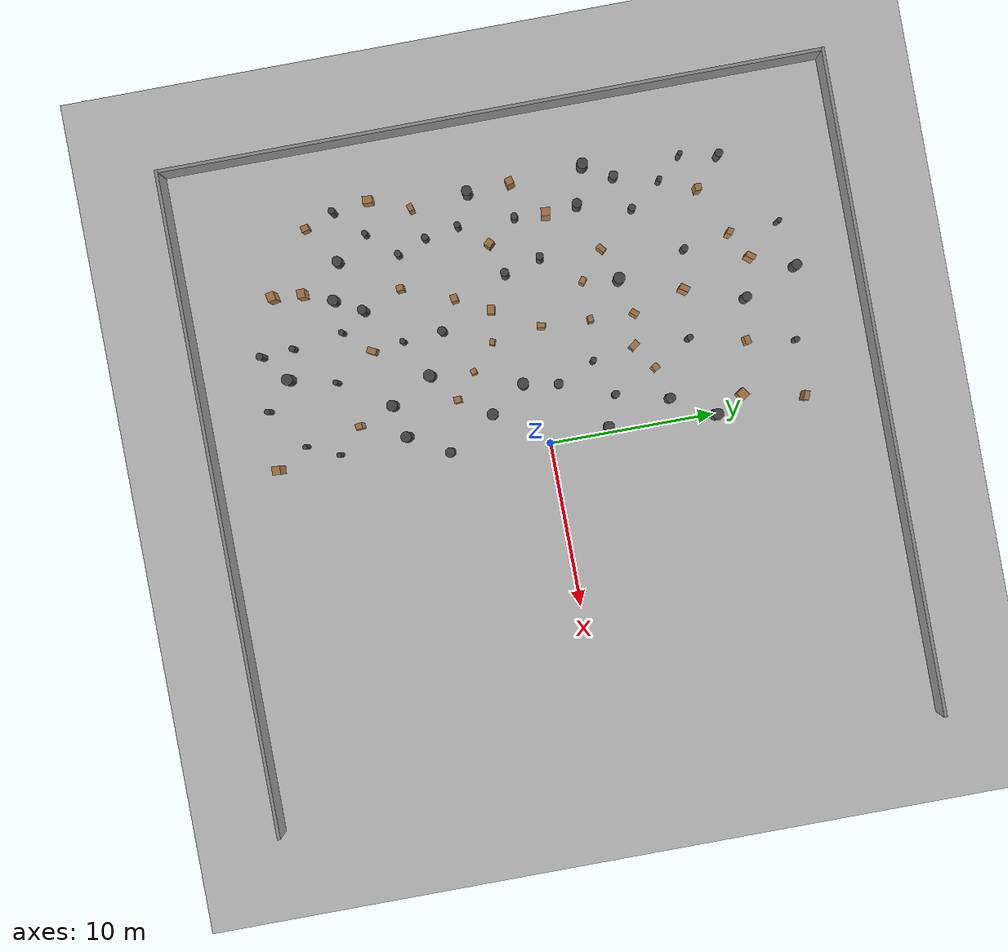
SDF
<sdf version="1.6">
 <world name="default">
  <model name="ground_plane">
   <static>1</static>
   <link name="link">
    <collision name="collision">
     <geometry><plane><normal>0 0 1</normal><size>80 80</size></plane></geometry>
     <surface><friction><ode><mu>0.5</mu><mu2>0.5</mu2></ode></friction></surface>
    </collision>
    <visual name="visual">
     <cast_shadows>0</cast_shadows>
     <geometry><plane><normal>0 0 1</normal><size>80 80</size></plane></geometry>
     <material>
      <script><uri>file://media/materials/scripts/gazebo.material</uri><name>Gazebo/Grey</name></script>
     </material>
    </visual>
   </link>
  </model>
  <model name="wall_north">
   <static>1</static>
   <link name="link">
    <collision name="collision"><geometry><box><size>40.4 0.2 1.5</size></box></geometry></collision>
    <visual name="visual">
     <geometry><box><size>40.4 0.2 1.5</size></box></geometry>
     <material>
      <script><uri>file://media/materials/scripts/gazebo.material</uri><name>Gazebo/Grey</name></script>
     </material>
    </visual>
   </link>
   <pose>0 20.1 0.75 0 0 0</pose>
  </model>
  <model name="wall_south">
   <static>1</static>
   <link name="link">
    <collision name="collision"><geometry><box><size>40.4 0.2 1.5</size></box></geometry></collision>
    <visual name="visual">
     <geometry><box><size>40.4 0.2 1.5</size></box></geometry>
     <material>
      <script><uri>file://media/materials/scripts/gazebo.material</uri><name>Gazebo/Grey</name></script>
     </material>
    </visual>
   </link>
   <pose>0 -20.1 0.75 0 0 0</pose>
  </model>
  <model name="wall_west">
   <static>1</static>
   <link name="link">
    <collision name="collision"><geometry><box><size>0.2 40.4 1.5</size></box></geometry></collision>
    <visual name="visual">
     <geometry><box><size>0.2 40.4 1.5</size></box></geometry>
     <material>
      <script><uri>file://media/materials/scripts/gazebo.material</uri><name>Gazebo/Grey</name></script>
     </material>
    </visual>
   </link>
   <pose>-20.1 0 0.75 0 0 0</pose>
  </model>
  <model name="obs_000">
   <static>1</static>
   <link name="link">
    <collision name="collision">
     <geometry><cylinder><radius>0.33</radius><length>1.2</length></cylinder></geometry>
    </collision>
    <visual name="visual">
     <geometry><cylinder><radius>0.33</radius><length>1.2</length></cylinder></geometry>
     <material>
      <script><uri>file://media/materials/scripts/gazebo.material</uri><name>Gazebo/DarkGrey</name></script>
     </material>
    </visual>
   </link>
   <pose>-3.93 -8.89 0.60 0 0 0</pose>
  </model>
  <model name="obs_003">
   <static>1</static>
   <link name="link">
    <collision name="collision"><geometry><box><size>0.32 0.54 0.8</size></box></geometry></collision>
    <visual name="visual">
     <geometry><box><size>0.32 0.54 0.8</size></box></geometry>
     <material>
      <script><uri>file://media/materials/scripts/gazebo.material</uri><name>Gazebo/Wood</name></script>
     </material>
    </visual>
   </link>
   <pose>-10.97 5.10 0.40 0 0 2.3</pose>
  </model>
  <model name="obs_006">
   <static>1</static>
   <link name="link">
    <collision name="collision"><geometry><box><size>0.39 0.34 1.3</size></box></geometry></collision>
    <visual name="visual">
     <geometry><box><size>0.39 0.34 1.3</size></box></geometry>
     <material>
      <script><uri>file://media/materials/scripts/gazebo.material</uri><name>Gazebo/Wood</name></script>
     </material>
    </visual>
   </link>
   <pose>-10.49 12.80 0.65 0 0 -0.58</pose>
  </model>
  <model name="obs_008">
   <static>1</static>
   <link name="link">
    <collision name="collision">
     <geometry><cylinder><radius>0.3</radius><length>1.2</length></cylinder></geometry>
    </collision>
    <visual name="visual">
     <geometry><cylinder><radius>0.3</radius><length>1.2</length></cylinder></geometry>
     <material>
      <script><uri>file://media/materials/scripts/gazebo.material</uri><name>Gazebo/DarkGrey</name></script>
     </material>
    </visual>
   </link>
   <pose>-1.37 7.53 0.60 0 0 0</pose>
  </model>
  <model name="obs_009">
   <static>1</static>
   <link name="link">
    <collision name="collision">
     <geometry><cylinder><radius>0.16</radius><length>1.4</length></cylinder></geometry>
    </collision>
    <visual name="visual">
     <geometry><cylinder><radius>0.16</radius><length>1.4</length></cylinder></geometry>
     <material>
      <script><uri>file://media/materials/scripts/gazebo.material</uri><name>Gazebo/DarkGrey</name></script>
     </material>
    </visual>
   </link>
   <pose>-5.88 -11.92 0.70 0 0 0</pose>
  </model>
  <model name="obs_012">
   <static>1</static>
   <link name="link">
    <collision name="collision"><geometry><box><size>0.5 0.42 1.1</size></box></geometry></collision>
    <visual name="visual">
     <geometry><box><size>0.5 0.42 1.1</size></box></geometry>
     <material>
      <script><uri>file://media/materials/scripts/gazebo.material</uri><name>Gazebo/Wood</name></script>
     </material>
    </visual>
   </link>
   <pose>-8.52 -2.07 0.55 0 0 2.94</pose>
  </model>
  <model name="obs_013">
   <static>1</static>
   <link name="link">
    <collision name="collision"><geometry><box><size>0.38 0.57 1.0</size></box></geometry></collision>
    <visual name="visual">
     <geometry><box><size>0.38 0.57 1.0</size></box></geometry>
     <material>
      <script><uri>file://media/materials/scripts/gazebo.material</uri><name>Gazebo/Wood</name></script>
     </material>
    </visual>
   </link>
   <pose>-7.39 -9.52 0.50 0 0 2.67</pose>
  </model>
  <model name="obs_014">
   <static>1</static>
   <link name="link">
    <collision name="collision"><geometry><box><size>0.52 0.36 0.9</size></box></geometry></collision>
    <visual name="visual">
     <geometry><box><size>0.52 0.36 0.9</size></box></geometry>
     <material>
      <script><uri>file://media/materials/scripts/gazebo.material</uri><name>Gazebo/Wood</name></script>
     </material>
    </visual>
   </link>
   <pose>-3.97 12.71 0.45 0 0 -2.95</pose>
  </model>
  <model name="obs_015">
   <static>1</static>
   <link name="link">
    <collision name="collision">
     <geometry><cylinder><radius>0.18</radius><length>1.0</length></cylinder></geometry>
    </collision>
    <visual name="visual">
     <geometry><cylinder><radius>0.18</radius><length>1.0</length></cylinder></geometry>
     <material>
      <script><uri>file://media/materials/scripts/gazebo.material</uri><name>Gazebo/DarkGrey</name></script>
     </material>
    </visual>
   </link>
   <pose>-14.38 -8.67 0.50 0 0 0</pose>
  </model>
  <model name="obs_016">
   <static>1</static>
   <link name="link">
    <collision name="collision">
     <geometry><cylinder><radius>0.35</radius><length>1.2</length></cylinder></geometry>
    </collision>
    <visual name="visual">
     <geometry><cylinder><radius>0.35</radius><length>1.2</length></cylinder></geometry>
     <material>
      <script><uri>file://media/materials/scripts/gazebo.material</uri><name>Gazebo/DarkGrey</name></script>
     </material>
    </visual>
   </link>
   <pose>-8.96 5.81 0.60 0 0 0</pose>
  </model>
  <model name="obs_017">
   <static>1</static>
   <link name="link">
    <collision name="collision"><geometry><box><size>0.55 0.31 1.2</size></box></geometry></collision>
    <visual name="visual">
     <geometry><box><size>0.55 0.31 1.2</size></box></geometry>
     <material>
      <script><uri>file://media/materials/scripts/gazebo.material</uri><name>Gazebo/Wood</name></script>
     </material>
    </visual>
   </link>
   <pose>-0.07 15.53 0.60 0 0 2.77</pose>
  </model>
  <model name="obs_019">
   <static>1</static>
   <link name="link">
    <collision name="collision"><geometry><box><size>0.57 0.39 0.9</size></box></geometry></collision>
    <visual name="visual">
     <geometry><box><size>0.57 0.39 0.9</size></box></geometry>
     <material>
      <script><uri>file://media/materials/scripts/gazebo.material</uri><name>Gazebo/Wood</name></script>
     </material>
    </visual>
   </link>
   <pose>-4.88 6.00 0.45 0 0 2.22</pose>
  </model>
  <model name="obs_022">
   <static>1</static>
   <link name="link">
    <collision name="collision">
     <geometry><cylinder><radius>0.25</radius><length>1.5</length></cylinder></geometry>
    </collision>
    <visual name="visual">
     <geometry><cylinder><radius>0.25</radius><length>1.5</length></cylinder></geometry>
     <material>
      <script><uri>file://media/materials/scripts/gazebo.material</uri><name>Gazebo/DarkGrey</name></script>
     </material>
    </visual>
   </link>
   <pose>-10.48 -0.85 0.75 0 0 0</pose>
  </model>
  <model name="obs_024">
   <static>1</static>
   <link name="link">
    <collision name="collision">
     <geometry><cylinder><radius>0.22</radius><length>0.9</length></cylinder></geometry>
    </collision>
    <visual name="visual">
     <geometry><cylinder><radius>0.22</radius><length>0.9</length></cylinder></geometry>
     <material>
      <script><uri>file://media/materials/scripts/gazebo.material</uri><name>Gazebo/DarkGrey</name></script>
     </material>
    </visual>
   </link>
   <pose>-10.05 10.00 0.45 0 0 0</pose>
  </model>
  <model name="obs_026">
   <static>1</static>
   <link name="link">
    <collision name="collision">
     <geometry><cylinder><radius>0.15</radius><length>1.3</length></cylinder></geometry>
    </collision>
    <visual name="visual">
     <geometry><cylinder><radius>0.15</radius><length>1.3</length></cylinder></geometry>
     <material>
      <script><uri>file://media/materials/scripts/gazebo.material</uri><name>Gazebo/DarkGrey</name></script>
     </material>
    </visual>
   </link>
   <pose>-15.61 10.68 0.65 0 0 0</pose>
  </model>
  <model name="obs_031">
   <static>1</static>
   <link name="link">
    <collision name="collision">
     <geometry><cylinder><radius>0.32</radius><length>1.0</length></cylinder></geometry>
    </collision>
    <visual name="visual">
     <geometry><cylinder><radius>0.32</radius><length>1.0</length></cylinder></geometry>
     <material>
      <script><uri>file://media/materials/scripts/gazebo.material</uri><name>Gazebo/DarkGrey</name></script>
     </material>
    </visual>
   </link>
   <pose>-10.79 -11.25 0.50 0 0 0</pose>
  </model>
  <model name="obs_037">
   <static>1</static>
   <link name="link">
    <collision name="collision"><geometry><box><size>0.39 0.42 1.2</size></box></geometry></collision>
    <visual name="visual">
     <geometry><box><size>0.39 0.42 1.2</size></box></geometry>
     <material>
      <script><uri>file://media/materials/scripts/gazebo.material</uri><name>Gazebo/Wood</name></script>
     </material>
    </visual>
   </link>
   <pose>-13.45 11.40 0.60 0 0 1.59</pose>
  </model>
  <model name="obs_038">
   <static>1</static>
   <link name="link">
    <collision name="collision">
     <geometry><cylinder><radius>0.34</radius><length>1.1</length></cylinder></geometry>
    </collision>
    <visual name="visual">
     <geometry><cylinder><radius>0.34</radius><length>1.1</length></cylinder></geometry>
     <material>
      <script><uri>file://media/materials/scripts/gazebo.material</uri><name>Gazebo/DarkGrey</name></script>
     </material>
    </visual>
   </link>
   <pose>-16.10 4.88 0.55 0 0 0</pose>
  </model>
  <model name="obs_040">
   <static>1</static>
   <link name="link">
    <collision name="collision"><geometry><box><size>0.56 0.49 1.5</size></box></geometry></collision>
    <visual name="visual">
     <geometry><box><size>0.56 0.49 1.5</size></box></geometry>
     <material>
      <script><uri>file://media/materials/scripts/gazebo.material</uri><name>Gazebo/Wood</name></script>
     </material>
    </visual>
   </link>
   <pose>-13.59 2.19 0.75 0 0 1.44</pose>
  </model>
  <model name="obs_044">
   <static>1</static>
   <link name="link">
    <collision name="collision">
     <geometry><cylinder><radius>0.34</radius><length>1.4</length></cylinder></geometry>
    </collision>
    <visual name="visual">
     <geometry><cylinder><radius>0.34</radius><length>1.4</length></cylinder></geometry>
     <material>
      <script><uri>file://media/materials/scripts/gazebo.material</uri><name>Gazebo/DarkGrey</name></script>
     </material>
    </visual>
   </link>
   <pose>-3.80 -0.97 0.70 0 0 0</pose>
  </model>
  <model name="obs_046">
   <static>1</static>
   <link name="link">
    <collision name="collision">
     <geometry><cylinder><radius>0.17</radius><length>1.2</length></cylinder></geometry>
    </collision>
    <visual name="visual">
     <geometry><cylinder><radius>0.17</radius><length>1.2</length></cylinder></geometry>
     <material>
      <script><uri>file://media/materials/scripts/gazebo.material</uri><name>Gazebo/DarkGrey</name></script>
     </material>
    </visual>
   </link>
   <pose>-7.60 -7.58 0.60 0 0 0</pose>
  </model>
  <model name="obs_047">
   <static>1</static>
   <link name="link">
    <collision name="collision"><geometry><box><size>0.59 0.35 1.5</size></box></geometry></collision>
    <visual name="visual">
     <geometry><box><size>0.59 0.35 1.5</size></box></geometry>
     <material>
      <script><uri>file://media/materials/scripts/gazebo.material</uri><name>Gazebo/Wood</name></script>
     </material>
    </visual>
   </link>
   <pose>-7.63 9.50 0.75 0 0 -2.21</pose>
  </model>
  <model name="obs_048">
   <static>1</static>
   <link name="link">
    <collision name="collision">
     <geometry><cylinder><radius>0.17</radius><length>1.2</length></cylinder></geometry>
    </collision>
    <visual name="visual">
     <geometry><cylinder><radius>0.17</radius><length>1.2</length></cylinder></geometry>
     <material>
      <script><uri>file://media/materials/scripts/gazebo.material</uri><name>Gazebo/DarkGrey</name></script>
     </material>
    </visual>
   </link>
   <pose>-4.91 -16.26 0.60 0 0 0</pose>
  </model>
  <model name="obs_051">
   <static>1</static>
   <link name="link">
    <collision name="collision">
     <geometry><cylinder><radius>0.22</radius><length>1.1</length></cylinder></geometry>
    </collision>
    <visual name="visual">
     <geometry><cylinder><radius>0.22</radius><length>1.1</length></cylinder></geometry>
     <material>
      <script><uri>file://media/materials/scripts/gazebo.material</uri><name>Gazebo/DarkGrey</name></script>
     </material>
    </visual>
   </link>
   <pose>-13.73 0.31 0.55 0 0 0</pose>
  </model>
  <model name="obs_052">
   <static>1</static>
   <link name="link">
    <collision name="collision"><geometry><box><size>0.34 0.33 1.1</size></box></geometry></collision>
    <visual name="visual">
     <geometry><box><size>0.34 0.33 1.1</size></box></geometry>
     <material>
      <script><uri>file://media/materials/scripts/gazebo.material</uri><name>Gazebo/Wood</name></script>
     </material>
    </visual>
   </link>
   <pose>-5.06 -3.75 0.55 0 0 -1.32</pose>
  </model>
  <model name="obs_053">
   <static>1</static>
   <link name="link">
    <collision name="collision"><geometry><box><size>0.55 0.58 1.0</size></box></geometry></collision>
    <visual name="visual">
     <geometry><box><size>0.55 0.58 1.0</size></box></geometry>
     <material>
      <script><uri>file://media/materials/scripts/gazebo.material</uri><name>Gazebo/Wood</name></script>
     </material>
    </visual>
   </link>
   <pose>-0.82 11.87 0.50 0 0 -0.97</pose>
  </model>
  <model name="obs_054">
   <static>1</static>
   <link name="link">
    <collision name="collision">
     <geometry><cylinder><radius>0.2</radius><length>1.0</length></cylinder></geometry>
    </collision>
    <visual name="visual">
     <geometry><cylinder><radius>0.2</radius><length>1.0</length></cylinder></geometry>
     <material>
      <script><uri>file://media/materials/scripts/gazebo.material</uri><name>Gazebo/DarkGrey</name></script>
     </material>
    </visual>
   </link>
   <pose>-12.82 -6.94 0.50 0 0 0</pose>
  </model>
  <model name="obs_057">
   <static>1</static>
   <link name="link">
    <collision name="collision">
     <geometry><cylinder><radius>0.34</radius><length>0.8</length></cylinder></geometry>
    </collision>
    <visual name="visual">
     <geometry><cylinder><radius>0.34</radius><length>0.8</length></cylinder></geometry>
     <material>
      <script><uri>file://media/materials/scripts/gazebo.material</uri><name>Gazebo/DarkGrey</name></script>
     </material>
    </visual>
   </link>
   <pose>-2.35 -3.10 0.40 0 0 0</pose>
  </model>
  <model name="obs_058">
   <static>1</static>
   <link name="link">
    <collision name="collision">
     <geometry><cylinder><radius>0.32</radius><length>1.5</length></cylinder></geometry>
    </collision>
    <visual name="visual">
     <geometry><cylinder><radius>0.32</radius><length>1.5</length></cylinder></geometry>
     <material>
      <script><uri>file://media/materials/scripts/gazebo.material</uri><name>Gazebo/DarkGrey</name></script>
     </material>
    </visual>
   </link>
   <pose>-1.93 -8.36 0.75 0 0 0</pose>
  </model>
  <model name="obs_059">
   <static>1</static>
   <link name="link">
    <collision name="collision"><geometry><box><size>0.39 0.42 1.1</size></box></geometry></collision>
    <visual name="visual">
     <geometry><box><size>0.39 0.42 1.1</size></box></geometry>
     <material>
      <script><uri>file://media/materials/scripts/gazebo.material</uri><name>Gazebo/Wood</name></script>
     </material>
    </visual>
   </link>
   <pose>-3.35 7.00 0.55 0 0 2.12</pose>
  </model>
  <model name="obs_060">
   <static>1</static>
   <link name="link">
    <collision name="collision">
     <geometry><cylinder><radius>0.29</radius><length>1.2</length></cylinder></geometry>
    </collision>
    <visual name="visual">
     <geometry><cylinder><radius>0.29</radius><length>1.2</length></cylinder></geometry>
     <material>
      <script><uri>file://media/materials/scripts/gazebo.material</uri><name>Gazebo/DarkGrey</name></script>
     </material>
    </visual>
   </link>
   <pose>-6.49 13.09 0.60 0 0 0</pose>
  </model>
  <model name="obs_061">
   <static>1</static>
   <link name="link">
    <collision name="collision"><geometry><box><size>0.42 0.32 1.1</size></box></geometry></collision>
    <visual name="visual">
     <geometry><box><size>0.42 0.32 1.1</size></box></geometry>
     <material>
      <script><uri>file://media/materials/scripts/gazebo.material</uri><name>Gazebo/Wood</name></script>
     </material>
    </visual>
   </link>
   <pose>-15.38 -5.70 0.55 0 0 0.26</pose>
  </model>
  <model name="obs_063">
   <static>1</static>
   <link name="link">
    <collision name="collision"><geometry><box><size>0.54 0.5 1.2</size></box></geometry></collision>
    <visual name="visual">
     <geometry><box><size>0.54 0.5 1.2</size></box></geometry>
     <material>
      <script><uri>file://media/materials/scripts/gazebo.material</uri><name>Gazebo/Wood</name></script>
     </material>
    </visual>
   </link>
   <pose>-11.62 -14.82 0.60 0 0 -2.94</pose>
  </model>
  <model name="obs_064">
   <static>1</static>
   <link name="link">
    <collision name="collision">
     <geometry><cylinder><radius>0.31</radius><length>1.3</length></cylinder></geometry>
    </collision>
    <visual name="visual">
     <geometry><cylinder><radius>0.31</radius><length>1.3</length></cylinder></geometry>
     <material>
      <script><uri>file://media/materials/scripts/gazebo.material</uri><name>Gazebo/DarkGrey</name></script>
     </material>
    </visual>
   </link>
   <pose>-15.70 -2.20 0.65 0 0 0</pose>
  </model>
  <model name="obs_065">
   <static>1</static>
   <link name="link">
    <collision name="collision"><geometry><box><size>0.52 0.49 1.5</size></box></geometry></collision>
    <visual name="visual">
     <geometry><box><size>0.52 0.49 1.5</size></box></geometry>
     <material>
      <script><uri>file://media/materials/scripts/gazebo.material</uri><name>Gazebo/Wood</name></script>
     </material>
    </visual>
   </link>
   <pose>-1.37 -16.30 0.75 0 0 -0.05</pose>
  </model>
  <model name="obs_066">
   <static>1</static>
   <link name="link">
    <collision name="collision">
     <geometry><cylinder><radius>0.28</radius><length>0.9</length></cylinder></geometry>
    </collision>
    <visual name="visual">
     <geometry><cylinder><radius>0.28</radius><length>0.9</length></cylinder></geometry>
     <material>
      <script><uri>file://media/materials/scripts/gazebo.material</uri><name>Gazebo/DarkGrey</name></script>
     </material>
    </visual>
   </link>
   <pose>-3.44 1.13 0.45 0 0 0</pose>
  </model>
  <model name="obs_067">
   <static>1</static>
   <link name="link">
    <collision name="collision">
     <geometry><cylinder><radius>0.15</radius><length>1.1</length></cylinder></geometry>
    </collision>
    <visual name="visual">
     <geometry><cylinder><radius>0.15</radius><length>1.1</length></cylinder></geometry>
     <material>
      <script><uri>file://media/materials/scripts/gazebo.material</uri><name>Gazebo/DarkGrey</name></script>
     </material>
    </visual>
   </link>
   <pose>-10.65 15.83 0.55 0 0 0</pose>
  </model>
  <model name="obs_072">
   <static>1</static>
   <link name="link">
    <collision name="collision"><geometry><box><size>0.31 0.49 1.3</size></box></geometry></collision>
    <visual name="visual">
     <geometry><box><size>0.31 0.49 1.3</size></box></geometry>
     <material>
      <script><uri>file://media/materials/scripts/gazebo.material</uri><name>Gazebo/Wood</name></script>
     </material>
    </visual>
   </link>
   <pose>-7.03 0.73 0.65 0 0 2.93</pose>
  </model>
  <model name="obs_080">
   <static>1</static>
   <link name="link">
    <collision name="collision"><geometry><box><size>0.47 0.52 1.2</size></box></geometry></collision>
    <visual name="visual">
     <geometry><box><size>0.47 0.52 1.2</size></box></geometry>
     <material>
      <script><uri>file://media/materials/scripts/gazebo.material</uri><name>Gazebo/Wood</name></script>
     </material>
    </visual>
   </link>
   <pose>-11.48 -13.02 0.60 0 0 -1.56</pose>
  </model>
  <model name="obs_081">
   <static>1</static>
   <link name="link">
    <collision name="collision">
     <geometry><cylinder><radius>0.24</radius><length>1.2</length></cylinder></geometry>
    </collision>
    <visual name="visual">
     <geometry><cylinder><radius>0.24</radius><length>1.2</length></cylinder></geometry>
     <material>
      <script><uri>file://media/materials/scripts/gazebo.material</uri><name>Gazebo/DarkGrey</name></script>
     </material>
    </visual>
   </link>
   <pose>-15.22 12.99 0.60 0 0 0</pose>
  </model>
  <model name="obs_083">
   <static>1</static>
   <link name="link">
    <collision name="collision"><geometry><box><size>0.3 0.36 1.0</size></box></geometry></collision>
    <visual name="visual">
     <geometry><box><size>0.3 0.36 1.0</size></box></geometry>
     <material>
      <script><uri>file://media/materials/scripts/gazebo.material</uri><name>Gazebo/Wood</name></script>
     </material>
    </visual>
   </link>
   <pose>-6.62 -2.33 0.50 0 0 1.24</pose>
  </model>
  <model name="obs_087">
   <static>1</static>
   <link name="link">
    <collision name="collision">
     <geometry><cylinder><radius>0.28</radius><length>1.4</length></cylinder></geometry>
    </collision>
    <visual name="visual">
     <geometry><cylinder><radius>0.28</radius><length>1.4</length></cylinder></geometry>
     <material>
      <script><uri>file://media/materials/scripts/gazebo.material</uri><name>Gazebo/DarkGrey</name></script>
     </material>
    </visual>
   </link>
   <pose>-9.85 -9.58 0.70 0 0 0</pose>
  </model>
  <model name="obs_090">
   <static>1</static>
   <link name="link">
    <collision name="collision">
     <geometry><cylinder><radius>0.32</radius><length>1.2</length></cylinder></geometry>
    </collision>
    <visual name="visual">
     <geometry><cylinder><radius>0.32</radius><length>1.2</length></cylinder></geometry>
     <material>
      <script><uri>file://media/materials/scripts/gazebo.material</uri><name>Gazebo/DarkGrey</name></script>
     </material>
    </visual>
   </link>
   <pose>-0.36 3.62 0.60 0 0 0</pose>
  </model>
  <model name="obs_093">
   <static>1</static>
   <link name="link">
    <collision name="collision"><geometry><box><size>0.43 0.36 0.9</size></box></geometry></collision>
    <visual name="visual">
     <geometry><box><size>0.43 0.36 0.9</size></box></geometry>
     <material>
      <script><uri>file://media/materials/scripts/gazebo.material</uri><name>Gazebo/Wood</name></script>
     </material>
    </visual>
   </link>
   <pose>-9.26 3.66 0.45 0 0 2.52</pose>
  </model>
  <model name="obs_096">
   <static>1</static>
   <link name="link">
    <collision name="collision"><geometry><box><size>0.41 0.43 1.2</size></box></geometry></collision>
    <visual name="visual">
     <geometry><box><size>0.41 0.43 1.2</size></box></geometry>
     <material>
      <script><uri>file://media/materials/scripts/gazebo.material</uri><name>Gazebo/Wood</name></script>
     </material>
    </visual>
   </link>
   <pose>-9.58 -4.10 0.60 0 0 -1.44</pose>
  </model>
  <model name="obs_098">
   <static>1</static>
   <link name="link">
    <collision name="collision"><geometry><box><size>0.46 0.43 1.3</size></box></geometry></collision>
    <visual name="visual">
     <geometry><box><size>0.46 0.43 1.3</size></box></geometry>
     <material>
      <script><uri>file://media/materials/scripts/gazebo.material</uri><name>Gazebo/Wood</name></script>
     </material>
    </visual>
   </link>
   <pose>-15.82 0.40 0.65 0 0 1.85</pose>
  </model>
  <model name="obs_099">
   <static>1</static>
   <link name="link">
    <collision name="collision">
     <geometry><cylinder><radius>0.35</radius><length>1.3</length></cylinder></geometry>
    </collision>
    <visual name="visual">
     <geometry><cylinder><radius>0.35</radius><length>1.3</length></cylinder></geometry>
     <material>
      <script><uri>file://media/materials/scripts/gazebo.material</uri><name>Gazebo/DarkGrey</name></script>
     </material>
    </visual>
   </link>
   <pose>-5.29 -6.38 0.65 0 0 0</pose>
  </model>
  <model name="obs_100">
   <static>1</static>
   <link name="link">
    <collision name="collision"><geometry><box><size>0.32 0.52 1.1</size></box></geometry></collision>
    <visual name="visual">
     <geometry><box><size>0.32 0.52 1.1</size></box></geometry>
     <material>
      <script><uri>file://media/materials/scripts/gazebo.material</uri><name>Gazebo/Wood</name></script>
     </material>
    </visual>
   </link>
   <pose>-6.78 6.35 0.55 0 0 2.4</pose>
  </model>
  <model name="obs_101">
   <static>1</static>
   <link name="link">
    <collision name="collision">
     <geometry><cylinder><radius>0.19</radius><length>1.3</length></cylinder></geometry>
    </collision>
    <visual name="visual">
     <geometry><cylinder><radius>0.19</radius><length>1.3</length></cylinder></geometry>
     <material>
      <script><uri>file://media/materials/scripts/gazebo.material</uri><name>Gazebo/DarkGrey</name></script>
     </material>
    </visual>
   </link>
   <pose>-13.82 -3.12 0.65 0 0 0</pose>
  </model>
  <model name="obs_102">
   <static>1</static>
   <link name="link">
    <collision name="collision"><geometry><box><size>0.46 0.36 0.8</size></box></geometry></collision>
    <visual name="visual">
     <geometry><box><size>0.46 0.36 0.8</size></box></geometry>
     <material>
      <script><uri>file://media/materials/scripts/gazebo.material</uri><name>Gazebo/Wood</name></script>
     </material>
    </visual>
   </link>
   <pose>-15.36 -12.17 0.40 0 0 -1.34</pose>
  </model>
  <model name="obs_103">
   <static>1</static>
   <link name="link">
    <collision name="collision">
     <geometry><cylinder><radius>0.34</radius><length>1.5</length></cylinder></geometry>
    </collision>
    <visual name="visual">
     <geometry><cylinder><radius>0.34</radius><length>1.5</length></cylinder></geometry>
     <material>
      <script><uri>file://media/materials/scripts/gazebo.material</uri><name>Gazebo/DarkGrey</name></script>
     </material>
    </visual>
   </link>
   <pose>0.09 10.09 0.75 0 0 0</pose>
  </model>
  <model name="obs_105">
   <static>1</static>
   <link name="link">
    <collision name="collision">
     <geometry><cylinder><radius>0.28</radius><length>0.9</length></cylinder></geometry>
    </collision>
    <visual name="visual">
     <geometry><cylinder><radius>0.28</radius><length>0.9</length></cylinder></geometry>
     <material>
      <script><uri>file://media/materials/scripts/gazebo.material</uri><name>Gazebo/DarkGrey</name></script>
     </material>
    </visual>
   </link>
   <pose>-15.11 6.60 0.45 0 0 0</pose>
  </model>
  <model name="obs_110">
   <static>1</static>
   <link name="link">
    <collision name="collision">
     <geometry><cylinder><radius>0.31</radius><length>0.9</length></cylinder></geometry>
    </collision>
    <visual name="visual">
     <geometry><cylinder><radius>0.31</radius><length>0.9</length></cylinder></geometry>
     <material>
      <script><uri>file://media/materials/scripts/gazebo.material</uri><name>Gazebo/DarkGrey</name></script>
     </material>
    </visual>
   </link>
   <pose>-13.04 -10.61 0.45 0 0 0</pose>
  </model>
  <model name="obs_112">
   <static>1</static>
   <link name="link">
    <collision name="collision">
     <geometry><cylinder><radius>0.24</radius><length>1.1</length></cylinder></geometry>
    </collision>
    <visual name="visual">
     <geometry><cylinder><radius>0.24</radius><length>1.1</length></cylinder></geometry>
     <material>
      <script><uri>file://media/materials/scripts/gazebo.material</uri><name>Gazebo/DarkGrey</name></script>
     </material>
    </visual>
   </link>
   <pose>-2.19 4.36 0.55 0 0 0</pose>
  </model>
  <model name="obs_115">
   <static>1</static>
   <link name="link">
    <collision name="collision">
     <geometry><cylinder><radius>0.17</radius><length>1.1</length></cylinder></geometry>
    </collision>
    <visual name="visual">
     <geometry><cylinder><radius>0.17</radius><length>1.1</length></cylinder></geometry>
     <material>
      <script><uri>file://media/materials/scripts/gazebo.material</uri><name>Gazebo/DarkGrey</name></script>
     </material>
    </visual>
   </link>
   <pose>-14.36 9.24 0.55 0 0 0</pose>
  </model>
  <model name="obs_116">
   <static>1</static>
   <link name="link">
    <collision name="collision"><geometry><box><size>0.58 0.44 0.9</size></box></geometry></collision>
    <visual name="visual">
     <geometry><box><size>0.58 0.44 0.9</size></box></geometry>
     <material>
      <script><uri>file://media/materials/scripts/gazebo.material</uri><name>Gazebo/Wood</name></script>
     </material>
    </visual>
   </link>
   <pose>-16.34 -8.16 0.45 0 0 1.52</pose>
  </model>
  <model name="obs_117">
   <static>1</static>
   <link name="link">
    <collision name="collision">
     <geometry><cylinder><radius>0.15</radius><length>1.2</length></cylinder></geometry>
    </collision>
    <visual name="visual">
     <geometry><cylinder><radius>0.15</radius><length>1.2</length></cylinder></geometry>
     <material>
      <script><uri>file://media/materials/scripts/gazebo.material</uri><name>Gazebo/DarkGrey</name></script>
     </material>
    </visual>
   </link>
   <pose>-1.60 -12.52 0.60 0 0 0</pose>
  </model>
  <model name="obs_120">
   <static>1</static>
   <link name="link">
    <collision name="collision">
     <geometry><cylinder><radius>0.19</radius><length>1.5</length></cylinder></geometry>
    </collision>
    <visual name="visual">
     <geometry><cylinder><radius>0.19</radius><length>1.5</length></cylinder></geometry>
     <material>
      <script><uri>file://media/materials/scripts/gazebo.material</uri><name>Gazebo/DarkGrey</name></script>
     </material>
    </visual>
   </link>
   <pose>-4.41 3.40 0.75 0 0 0</pose>
  </model>
  <model name="obs_123">
   <static>1</static>
   <link name="link">
    <collision name="collision"><geometry><box><size>0.48 0.44 1.0</size></box></geometry></collision>
    <visual name="visual">
     <geometry><box><size>0.48 0.44 1.0</size></box></geometry>
     <material>
      <script><uri>file://media/materials/scripts/gazebo.material</uri><name>Gazebo/Wood</name></script>
     </material>
    </visual>
   </link>
   <pose>-12.46 -1.45 0.50 0 0 -0.82</pose>
  </model>
  <model name="obs_127">
   <static>1</static>
   <link name="link">
    <collision name="collision">
     <geometry><cylinder><radius>0.26</radius><length>1.2</length></cylinder></geometry>
    </collision>
    <visual name="visual">
     <geometry><cylinder><radius>0.26</radius><length>1.2</length></cylinder></geometry>
     <material>
      <script><uri>file://media/materials/scripts/gazebo.material</uri><name>Gazebo/DarkGrey</name></script>
     </material>
    </visual>
   </link>
   <pose>-7.78 -5.16 0.60 0 0 0</pose>
  </model>
  <model name="obs_129">
   <static>1</static>
   <link name="link">
    <collision name="collision">
     <geometry><cylinder><radius>0.29</radius><length>1.2</length></cylinder></geometry>
    </collision>
    <visual name="visual">
     <geometry><cylinder><radius>0.29</radius><length>1.2</length></cylinder></geometry>
     <material>
      <script><uri>file://media/materials/scripts/gazebo.material</uri><name>Gazebo/DarkGrey</name></script>
     </material>
    </visual>
   </link>
   <pose>-13.80 4.13 0.60 0 0 0</pose>
  </model>
  <model name="obs_130">
   <static>1</static>
   <link name="link">
    <collision name="collision"><geometry><box><size>0.35 0.42 1.1</size></box></geometry></collision>
    <visual name="visual">
     <geometry><box><size>0.35 0.42 1.1</size></box></geometry>
     <material>
      <script><uri>file://media/materials/scripts/gazebo.material</uri><name>Gazebo/Wood</name></script>
     </material>
    </visual>
   </link>
   <pose>-10.77 -7.18 0.55 0 0 -3.06</pose>
  </model>
  <model name="obs_131">
   <static>1</static>
   <link name="link">
    <collision name="collision">
     <geometry><cylinder><radius>0.17</radius><length>1.1</length></cylinder></geometry>
    </collision>
    <visual name="visual">
     <geometry><cylinder><radius>0.17</radius><length>1.1</length></cylinder></geometry>
     <material>
      <script><uri>file://media/materials/scripts/gazebo.material</uri><name>Gazebo/DarkGrey</name></script>
     </material>
    </visual>
   </link>
   <pose>-8.79 -11.09 0.55 0 0 0</pose>
  </model>
  <model name="obs_133">
   <static>1</static>
   <link name="link">
    <collision name="collision"><geometry><box><size>0.33 0.57 1.3</size></box></geometry></collision>
    <visual name="visual">
     <geometry><box><size>0.33 0.57 1.3</size></box></geometry>
     <material>
      <script><uri>file://media/materials/scripts/gazebo.material</uri><name>Gazebo/Wood</name></script>
     </material>
    </visual>
   </link>
   <pose>-8.85 13.75 0.65 0 0 -0.67</pose>
  </model>
  <model name="obs_134">
   <static>1</static>
   <link name="link">
    <collision name="collision"><geometry><box><size>0.38 0.43 1.2</size></box></geometry></collision>
    <visual name="visual">
     <geometry><box><size>0.38 0.43 1.2</size></box></geometry>
     <material>
      <script><uri>file://media/materials/scripts/gazebo.material</uri><name>Gazebo/Wood</name></script>
     </material>
    </visual>
   </link>
   <pose>-3.58 -4.99 0.60 0 0 0.07</pose>
  </model>
  <model name="obs_135">
   <static>1</static>
   <link name="link">
    <collision name="collision"><geometry><box><size>0.33 0.39 1.2</size></box></geometry></collision>
    <visual name="visual">
     <geometry><box><size>0.33 0.39 1.2</size></box></geometry>
     <material>
      <script><uri>file://media/materials/scripts/gazebo.material</uri><name>Gazebo/Wood</name></script>
     </material>
    </visual>
   </link>
   <pose>-6.89 3.68 0.60 0 0 -1.46</pose>
  </model>
  <model name="obs_137">
   <static>1</static>
   <link name="link">
    <collision name="collision">
     <geometry><cylinder><radius>0.21</radius><length>0.9</length></cylinder></geometry>
    </collision>
    <visual name="visual">
     <geometry><cylinder><radius>0.21</radius><length>0.9</length></cylinder></geometry>
     <material>
      <script><uri>file://media/materials/scripts/gazebo.material</uri><name>Gazebo/DarkGrey</name></script>
     </material>
    </visual>
   </link>
   <pose>-13.50 -5.18 0.45 0 0 0</pose>
  </model>
  <model name="obs_141">
   <static>1</static>
   <link name="link">
    <collision name="collision">
     <geometry><cylinder><radius>0.21</radius><length>1.3</length></cylinder></geometry>
    </collision>
    <visual name="visual">
     <geometry><cylinder><radius>0.21</radius><length>1.3</length></cylinder></geometry>
     <material>
      <script><uri>file://media/materials/scripts/gazebo.material</uri><name>Gazebo/DarkGrey</name></script>
     </material>
    </visual>
   </link>
   <pose>-8.22 -16.10 0.65 0 0 0</pose>
  </model>
  <model name="obs_143">
   <static>1</static>
   <link name="link">
    <collision name="collision">
     <geometry><cylinder><radius>0.31</radius><length>1.1</length></cylinder></geometry>
    </collision>
    <visual name="visual">
     <geometry><cylinder><radius>0.31</radius><length>1.1</length></cylinder></geometry>
     <material>
      <script><uri>file://media/materials/scripts/gazebo.material</uri><name>Gazebo/DarkGrey</name></script>
     </material>
    </visual>
   </link>
   <pose>-7.85 16.38 0.55 0 0 0</pose>
  </model>
  <model name="obs_144">
   <static>1</static>
   <link name="link">
    <collision name="collision">
     <geometry><cylinder><radius>0.2</radius><length>1.2</length></cylinder></geometry>
    </collision>
    <visual name="visual">
     <geometry><cylinder><radius>0.2</radius><length>1.2</length></cylinder></geometry>
     <material>
      <script><uri>file://media/materials/scripts/gazebo.material</uri><name>Gazebo/DarkGrey</name></script>
     </material>
    </visual>
   </link>
   <pose>-16.01 -10.34 0.60 0 0 0</pose>
  </model>
  <model name="obs_145">
   <static>1</static>
   <link name="link">
    <collision name="collision">
     <geometry><cylinder><radius>0.23</radius><length>1.5</length></cylinder></geometry>
    </collision>
    <visual name="visual">
     <geometry><cylinder><radius>0.23</radius><length>1.5</length></cylinder></geometry>
     <material>
      <script><uri>file://media/materials/scripts/gazebo.material</uri><name>Gazebo/DarkGrey</name></script>
     </material>
    </visual>
   </link>
   <pose>-11.05 1.37 0.75 0 0 0</pose>
  </model>
  <model name="obs_147">
   <static>1</static>
   <link name="link">
    <collision name="collision"><geometry><box><size>0.36 0.39 1.4</size></box></geometry></collision>
    <visual name="visual">
     <geometry><box><size>0.36 0.39 1.4</size></box></geometry>
     <material>
      <script><uri>file://media/materials/scripts/gazebo.material</uri><name>Gazebo/Wood</name></script>
     </material>
    </visual>
   </link>
   <pose>-3.07 -11.02 0.70 0 0 0.11</pose>
  </model>
  <model name="obs_149">
   <static>1</static>
   <link name="link">
    <collision name="collision">
     <geometry><cylinder><radius>0.19</radius><length>1.0</length></cylinder></geometry>
    </collision>
    <visual name="visual">
     <geometry><cylinder><radius>0.19</radius><length>1.0</length></cylinder></geometry>
     <material>
      <script><uri>file://media/materials/scripts/gazebo.material</uri><name>Gazebo/DarkGrey</name></script>
     </material>
    </visual>
   </link>
   <pose>-8.37 -14.17 0.50 0 0 0</pose>
  </model>
  <model name="obs_150">
   <static>1</static>
   <link name="link">
    <collision name="collision">
     <geometry><cylinder><radius>0.29</radius><length>1.0</length></cylinder></geometry>
    </collision>
    <visual name="visual">
     <geometry><cylinder><radius>0.29</radius><length>1.0</length></cylinder></geometry>
     <material>
      <script><uri>file://media/materials/scripts/gazebo.material</uri><name>Gazebo/DarkGrey</name></script>
     </material>
    </visual>
   </link>
   <pose>-0.56 -6.00 0.50 0 0 0</pose>
  </model>
  <model name="obs_151">
   <static>1</static>
   <link name="link">
    <collision name="collision">
     <geometry><cylinder><radius>0.19</radius><length>1.4</length></cylinder></geometry>
    </collision>
    <visual name="visual">
     <geometry><cylinder><radius>0.19</radius><length>1.4</length></cylinder></geometry>
     <material>
      <script><uri>file://media/materials/scripts/gazebo.material</uri><name>Gazebo/DarkGrey</name></script>
     </material>
    </visual>
   </link>
   <pose>-4.70 9.29 0.70 0 0 0</pose>
  </model>
  <model name="obs_152">
   <static>1</static>
   <link name="link">
    <collision name="collision">
     <geometry><cylinder><radius>0.22</radius><length>0.9</length></cylinder></geometry>
    </collision>
    <visual name="visual">
     <geometry><cylinder><radius>0.22</radius><length>0.9</length></cylinder></geometry>
     <material>
      <script><uri>file://media/materials/scripts/gazebo.material</uri><name>Gazebo/DarkGrey</name></script>
     </material>
    </visual>
   </link>
   <pose>-13.00 7.34 0.45 0 0 0</pose>
  </model>
  <model name="obs_154">
   <static>1</static>
   <link name="link">
    <collision name="collision">
     <geometry><cylinder><radius>0.34</radius><length>1.2</length></cylinder></geometry>
    </collision>
    <visual name="visual">
     <geometry><cylinder><radius>0.34</radius><length>1.2</length></cylinder></geometry>
     <material>
      <script><uri>file://media/materials/scripts/gazebo.material</uri><name>Gazebo/DarkGrey</name></script>
     </material>
    </visual>
   </link>
   <pose>-6.58 -14.76 0.60 0 0 0</pose>
  </model>
  <model name="obs_157">
   <static>1</static>
   <link name="link">
    <collision name="collision">
     <geometry><cylinder><radius>0.15</radius><length>1.1</length></cylinder></geometry>
    </collision>
    <visual name="visual">
     <geometry><cylinder><radius>0.15</radius><length>1.1</length></cylinder></geometry>
     <material>
      <script><uri>file://media/materials/scripts/gazebo.material</uri><name>Gazebo/DarkGrey</name></script>
     </material>
    </visual>
   </link>
   <pose>-2.44 -14.45 0.55 0 0 0</pose>
  </model>
  <model name="obs_159">
   <static>1</static>
   <link name="link">
    <collision name="collision">
     <geometry><cylinder><radius>0.18</radius><length>0.9</length></cylinder></geometry>
    </collision>
    <visual name="visual">
     <geometry><cylinder><radius>0.18</radius><length>0.9</length></cylinder></geometry>
     <material>
      <script><uri>file://media/materials/scripts/gazebo.material</uri><name>Gazebo/DarkGrey</name></script>
     </material>
    </visual>
   </link>
   <pose>-3.47 15.62 0.45 0 0 0</pose>
  </model>
 </world>
</sdf>
